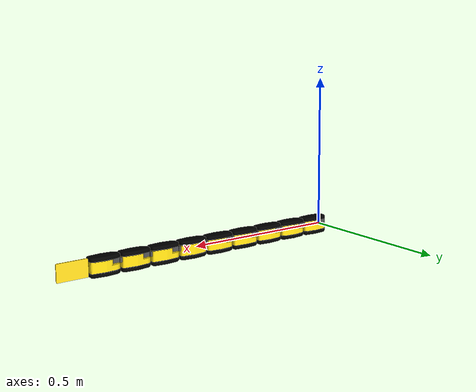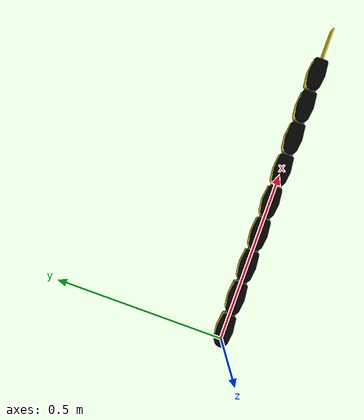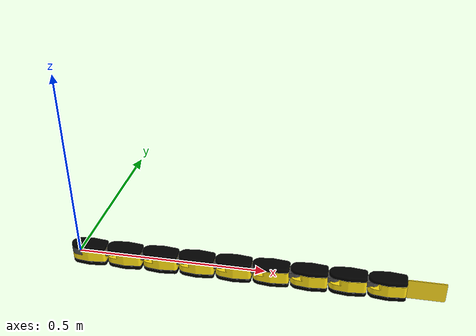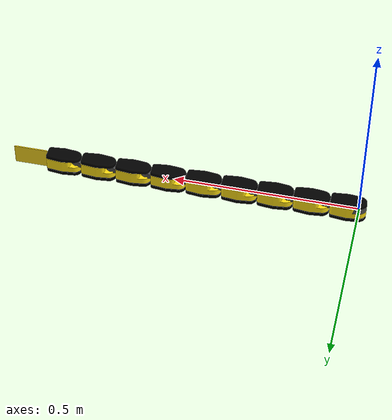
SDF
<?xml version="1.0" ?>
<sdf version="1.6">
    <model name="amphibot">
      <pose>0.0 0.0 0.0 0.0 0.0 0.0</pose>
      <link name="body_module_0">
        <pose>0.0 0.0 0.0 0.0 0.0 0.0</pose>
        <inertial>
          <pose>0.029596198383331537 3.2923378179925624e-05 -0.008853017251982507 0.0 0.0 0.0</pose>
          <mass>0.21400000000000002</mass>
          <inertia>
            <ixx>0.00011899481859948916</ixx>
            <ixy>4.0755619056917915e-09</ixy>
            <ixz>-2.1781625976272155e-06</ixz>
            <iyy>0.00025404081852360363</iyy>
            <iyz>-1.7971413478846753e-09</iyz>
            <izz>0.0002275056741399228</izz>
          </inertia>
        </inertial>
        <collision name="body_module_0_collision">
          <pose>0.0975 0.0 0.0 0.0 0.0 0.0</pose>
          <geometry>
            <mesh>
              <uri>model://amphibot/meshes/amphibot_module.dae</uri>
              <scale>1.0 1.0 1.0</scale>
            </mesh>
          </geometry>
        </collision>
        <visual name="body_module_0_visual">
          <pose>0.0975 0.0 0.0 0.0 0.0 0.0</pose>
          <geometry>
            <mesh>
              <uri>model://amphibot/meshes/amphibot_module.dae</uri>
              <scale>1.0 1.0 1.0</scale>
            </mesh>
          </geometry>
          <material/>
        </visual>
      </link>
      <link name="body_module_1">
        <pose>0.0975 0.0 0.0 0.0 0.0 0.0</pose>
        <inertial>
          <pose>0.029596198383331537 3.2923378179925624e-05 -0.008853017251982507 0.0 0.0 0.0</pose>
          <mass>0.21400000000000002</mass>
          <inertia>
            <ixx>0.00011899481859948916</ixx>
            <ixy>4.0755619056917915e-09</ixy>
            <ixz>-2.1781625976272155e-06</ixz>
            <iyy>0.00025404081852360363</iyy>
            <iyz>-1.7971413478846753e-09</iyz>
            <izz>0.0002275056741399228</izz>
          </inertia>
        </inertial>
        <collision name="body_module_1_collision">
          <pose>0.0975 0.0 0.0 0.0 0.0 0.0</pose>
          <geometry>
            <mesh>
              <uri>model://amphibot/meshes/amphibot_module.dae</uri>
              <scale>1.0 1.0 1.0</scale>
            </mesh>
          </geometry>
        </collision>
        <visual name="body_module_1_visual">
          <pose>0.0975 0.0 0.0 0.0 0.0 0.0</pose>
          <geometry>
            <mesh>
              <uri>model://amphibot/meshes/amphibot_module.dae</uri>
              <scale>1.0 1.0 1.0</scale>
            </mesh>
          </geometry>
          <material/>
        </visual>
      </link>
      <link name="body_module_2">
        <pose>0.195 0.0 0.0 0.0 0.0 0.0</pose>
        <inertial>
          <pose>0.029596198383331537 3.2923378179925624e-05 -0.008853017251982507 0.0 0.0 0.0</pose>
          <mass>0.21400000000000002</mass>
          <inertia>
            <ixx>0.00011899481859948916</ixx>
            <ixy>4.0755619056917915e-09</ixy>
            <ixz>-2.1781625976272155e-06</ixz>
            <iyy>0.00025404081852360363</iyy>
            <iyz>-1.7971413478846753e-09</iyz>
            <izz>0.0002275056741399228</izz>
          </inertia>
        </inertial>
        <collision name="body_module_2_collision">
          <pose>0.0975 0.0 0.0 0.0 0.0 0.0</pose>
          <geometry>
            <mesh>
              <uri>model://amphibot/meshes/amphibot_module.dae</uri>
              <scale>1.0 1.0 1.0</scale>
            </mesh>
          </geometry>
        </collision>
        <visual name="body_module_2_visual">
          <pose>0.0975 0.0 0.0 0.0 0.0 0.0</pose>
          <geometry>
            <mesh>
              <uri>model://amphibot/meshes/amphibot_module.dae</uri>
              <scale>1.0 1.0 1.0</scale>
            </mesh>
          </geometry>
          <material/>
        </visual>
      </link>
      <link name="body_module_3">
        <pose>0.2925 0.0 0.0 0.0 0.0 0.0</pose>
        <inertial>
          <pose>0.029596198383331537 3.2923378179925624e-05 -0.008853017251982507 0.0 0.0 0.0</pose>
          <mass>0.21400000000000002</mass>
          <inertia>
            <ixx>0.00011899481859948916</ixx>
            <ixy>4.0755619056917915e-09</ixy>
            <ixz>-2.1781625976272155e-06</ixz>
            <iyy>0.00025404081852360363</iyy>
            <iyz>-1.7971413478846753e-09</iyz>
            <izz>0.0002275056741399228</izz>
          </inertia>
        </inertial>
        <collision name="body_module_3_collision">
          <pose>0.0975 0.0 0.0 0.0 0.0 0.0</pose>
          <geometry>
            <mesh>
              <uri>model://amphibot/meshes/amphibot_module.dae</uri>
              <scale>1.0 1.0 1.0</scale>
            </mesh>
          </geometry>
        </collision>
        <visual name="body_module_3_visual">
          <pose>0.0975 0.0 0.0 0.0 0.0 0.0</pose>
          <geometry>
            <mesh>
              <uri>model://amphibot/meshes/amphibot_module.dae</uri>
              <scale>1.0 1.0 1.0</scale>
            </mesh>
          </geometry>
          <material/>
        </visual>
      </link>
      <link name="body_module_4">
        <pose>0.39 0.0 0.0 0.0 0.0 0.0</pose>
        <inertial>
          <pose>0.029596198383331537 3.2923378179925624e-05 -0.008853017251982507 0.0 0.0 0.0</pose>
          <mass>0.21400000000000002</mass>
          <inertia>
            <ixx>0.00011899481859948916</ixx>
            <ixy>4.0755619056917915e-09</ixy>
            <ixz>-2.1781625976272155e-06</ixz>
            <iyy>0.00025404081852360363</iyy>
            <iyz>-1.7971413478846753e-09</iyz>
            <izz>0.0002275056741399228</izz>
          </inertia>
        </inertial>
        <collision name="body_module_4_collision">
          <pose>0.0975 0.0 0.0 0.0 0.0 0.0</pose>
          <geometry>
            <mesh>
              <uri>model://amphibot/meshes/amphibot_module.dae</uri>
              <scale>1.0 1.0 1.0</scale>
            </mesh>
          </geometry>
        </collision>
        <visual name="body_module_4_visual">
          <pose>0.0975 0.0 0.0 0.0 0.0 0.0</pose>
          <geometry>
            <mesh>
              <uri>model://amphibot/meshes/amphibot_module.dae</uri>
              <scale>1.0 1.0 1.0</scale>
            </mesh>
          </geometry>
          <material/>
        </visual>
      </link>
      <link name="body_module_5">
        <pose>0.48750000000000004 0.0 0.0 0.0 0.0 0.0</pose>
        <inertial>
          <pose>0.029596198383331537 3.2923378179925624e-05 -0.008853017251982507 0.0 0.0 0.0</pose>
          <mass>0.21400000000000002</mass>
          <inertia>
            <ixx>0.00011899481859948916</ixx>
            <ixy>4.0755619056917915e-09</ixy>
            <ixz>-2.1781625976272155e-06</ixz>
            <iyy>0.00025404081852360363</iyy>
            <iyz>-1.7971413478846753e-09</iyz>
            <izz>0.0002275056741399228</izz>
          </inertia>
        </inertial>
        <collision name="body_module_5_collision">
          <pose>0.0975 0.0 0.0 0.0 0.0 0.0</pose>
          <geometry>
            <mesh>
              <uri>model://amphibot/meshes/amphibot_module.dae</uri>
              <scale>1.0 1.0 1.0</scale>
            </mesh>
          </geometry>
        </collision>
        <visual name="body_module_5_visual">
          <pose>0.0975 0.0 0.0 0.0 0.0 0.0</pose>
          <geometry>
            <mesh>
              <uri>model://amphibot/meshes/amphibot_module.dae</uri>
              <scale>1.0 1.0 1.0</scale>
            </mesh>
          </geometry>
          <material/>
        </visual>
      </link>
      <link name="body_module_6">
        <pose>0.585 0.0 0.0 0.0 0.0 0.0</pose>
        <inertial>
          <pose>0.029596198383331537 3.2923378179925624e-05 -0.008853017251982507 0.0 0.0 0.0</pose>
          <mass>0.21400000000000002</mass>
          <inertia>
            <ixx>0.00011899481859948916</ixx>
            <ixy>4.0755619056917915e-09</ixy>
            <ixz>-2.1781625976272155e-06</ixz>
            <iyy>0.00025404081852360363</iyy>
            <iyz>-1.7971413478846753e-09</iyz>
            <izz>0.0002275056741399228</izz>
          </inertia>
        </inertial>
        <collision name="body_module_6_collision">
          <pose>0.0975 0.0 0.0 0.0 0.0 0.0</pose>
          <geometry>
            <mesh>
              <uri>model://amphibot/meshes/amphibot_module.dae</uri>
              <scale>1.0 1.0 1.0</scale>
            </mesh>
          </geometry>
        </collision>
        <visual name="body_module_6_visual">
          <pose>0.0975 0.0 0.0 0.0 0.0 0.0</pose>
          <geometry>
            <mesh>
              <uri>model://amphibot/meshes/amphibot_module.dae</uri>
              <scale>1.0 1.0 1.0</scale>
            </mesh>
          </geometry>
          <material/>
        </visual>
      </link>
      <link name="body_module_7">
        <pose>0.6825 0.0 0.0 0.0 0.0 0.0</pose>
        <inertial>
          <pose>0.029596198383331537 3.2923378179925624e-05 -0.008853017251982507 0.0 0.0 0.0</pose>
          <mass>0.21400000000000002</mass>
          <inertia>
            <ixx>0.00011899481859948916</ixx>
            <ixy>4.0755619056917915e-09</ixy>
            <ixz>-2.1781625976272155e-06</ixz>
            <iyy>0.00025404081852360363</iyy>
            <iyz>-1.7971413478846753e-09</iyz>
            <izz>0.0002275056741399228</izz>
          </inertia>
        </inertial>
        <collision name="body_module_7_collision">
          <pose>0.0975 0.0 0.0 0.0 0.0 0.0</pose>
          <geometry>
            <mesh>
              <uri>model://amphibot/meshes/amphibot_module.dae</uri>
              <scale>1.0 1.0 1.0</scale>
            </mesh>
          </geometry>
        </collision>
        <visual name="body_module_7_visual">
          <pose>0.0975 0.0 0.0 0.0 0.0 0.0</pose>
          <geometry>
            <mesh>
              <uri>model://amphibot/meshes/amphibot_module.dae</uri>
              <scale>1.0 1.0 1.0</scale>
            </mesh>
          </geometry>
          <material/>
        </visual>
      </link>
      <link name="body_module_8">
        <pose>0.78 0.0 0.0 0.0 0.0 0.0</pose>
        <inertial>
          <pose>0.029596198383331537 3.2923378179925624e-05 -0.008853017251982507 0.0 0.0 0.0</pose>
          <mass>0.21400000000000002</mass>
          <inertia>
            <ixx>0.00011899481859948916</ixx>
            <ixy>4.0755619056917915e-09</ixy>
            <ixz>-2.1781625976272155e-06</ixz>
            <iyy>0.00025404081852360363</iyy>
            <iyz>-1.7971413478846753e-09</iyz>
            <izz>0.0002275056741399228</izz>
          </inertia>
        </inertial>
        <collision name="body_module_8_collision">
          <pose>0.0975 0.0 0.0 0.0 0.0 0.0</pose>
          <geometry>
            <mesh>
              <uri>model://amphibot/meshes/amphibot_module.dae</uri>
              <scale>1.0 1.0 1.0</scale>
            </mesh>
          </geometry>
        </collision>
        <visual name="body_module_8_visual">
          <pose>0.0975 0.0 0.0 0.0 0.0 0.0</pose>
          <geometry>
            <mesh>
              <uri>model://amphibot/meshes/amphibot_module.dae</uri>
              <scale>1.0 1.0 1.0</scale>
            </mesh>
          </geometry>
          <material/>
        </visual>
      </link>
      <link name="body_connector_0">
        <pose>0.0 0.0 0.0 0.0 0.0 0.0</pose>
        <inertial>
          <pose>0.0870838011914423 9.854652666755277e-06 0.009335993975232255 0.0 0.0 0.0</pose>
          <mass>0.02</mass>
          <inertia>
            <ixx>1.4289586715122325e-06</ixx>
            <ixy>-7.125554049376751e-11</ixy>
            <ixz>7.351742039123867e-08</ixz>
            <iyy>1.5640750569250598e-06</iyy>
            <iyz>-3.6602870634995696e-11</iyz>
            <izz>2.1333392254479693e-06</izz>
          </inertia>
        </inertial>
        <collision name="body_connector_0_collision">
          <pose>0.0975 0.0 0.0 0.0 0.0 0.0</pose>
          <geometry>
            <mesh>
              <uri>model://amphibot/meshes/amphibot_connector.dae</uri>
              <scale>1.0 1.0 1.0</scale>
            </mesh>
          </geometry>
        </collision>
        <visual name="body_connector_0_visual">
          <pose>0.0975 0.0 0.0 0.0 0.0 0.0</pose>
          <geometry>
            <mesh>
              <uri>model://amphibot/meshes/amphibot_connector.dae</uri>
              <scale>1.0 1.0 1.0</scale>
            </mesh>
          </geometry>
          <material/>
        </visual>
      </link>
      <link name="body_connector_1">
        <pose>0.0975 0.0 0.0 0.0 0.0 0.0</pose>
        <inertial>
          <pose>0.0870838011914423 9.854652666755277e-06 0.009335993975232255 0.0 0.0 0.0</pose>
          <mass>0.02</mass>
          <inertia>
            <ixx>1.4289586715122325e-06</ixx>
            <ixy>-7.125554049376751e-11</ixy>
            <ixz>7.351742039123867e-08</ixz>
            <iyy>1.5640750569250598e-06</iyy>
            <iyz>-3.6602870634995696e-11</iyz>
            <izz>2.1333392254479693e-06</izz>
          </inertia>
        </inertial>
        <collision name="body_connector_1_collision">
          <pose>0.0975 0.0 0.0 0.0 0.0 0.0</pose>
          <geometry>
            <mesh>
              <uri>model://amphibot/meshes/amphibot_connector.dae</uri>
              <scale>1.0 1.0 1.0</scale>
            </mesh>
          </geometry>
        </collision>
        <visual name="body_connector_1_visual">
          <pose>0.0975 0.0 0.0 0.0 0.0 0.0</pose>
          <geometry>
            <mesh>
              <uri>model://amphibot/meshes/amphibot_connector.dae</uri>
              <scale>1.0 1.0 1.0</scale>
            </mesh>
          </geometry>
          <material/>
        </visual>
      </link>
      <link name="body_connector_2">
        <pose>0.195 0.0 0.0 0.0 0.0 0.0</pose>
        <inertial>
          <pose>0.0870838011914423 9.854652666755277e-06 0.009335993975232255 0.0 0.0 0.0</pose>
          <mass>0.02</mass>
          <inertia>
            <ixx>1.4289586715122325e-06</ixx>
            <ixy>-7.125554049376751e-11</ixy>
            <ixz>7.351742039123867e-08</ixz>
            <iyy>1.5640750569250598e-06</iyy>
            <iyz>-3.6602870634995696e-11</iyz>
            <izz>2.1333392254479693e-06</izz>
          </inertia>
        </inertial>
        <collision name="body_connector_2_collision">
          <pose>0.0975 0.0 0.0 0.0 0.0 0.0</pose>
          <geometry>
            <mesh>
              <uri>model://amphibot/meshes/amphibot_connector.dae</uri>
              <scale>1.0 1.0 1.0</scale>
            </mesh>
          </geometry>
        </collision>
        <visual name="body_connector_2_visual">
          <pose>0.0975 0.0 0.0 0.0 0.0 0.0</pose>
          <geometry>
            <mesh>
              <uri>model://amphibot/meshes/amphibot_connector.dae</uri>
              <scale>1.0 1.0 1.0</scale>
            </mesh>
          </geometry>
          <material/>
        </visual>
      </link>
      <link name="body_connector_3">
        <pose>0.2925 0.0 0.0 0.0 0.0 0.0</pose>
        <inertial>
          <pose>0.0870838011914423 9.854652666755277e-06 0.009335993975232255 0.0 0.0 0.0</pose>
          <mass>0.02</mass>
          <inertia>
            <ixx>1.4289586715122325e-06</ixx>
            <ixy>-7.125554049376751e-11</ixy>
            <ixz>7.351742039123867e-08</ixz>
            <iyy>1.5640750569250598e-06</iyy>
            <iyz>-3.6602870634995696e-11</iyz>
            <izz>2.1333392254479693e-06</izz>
          </inertia>
        </inertial>
        <collision name="body_connector_3_collision">
          <pose>0.0975 0.0 0.0 0.0 0.0 0.0</pose>
          <geometry>
            <mesh>
              <uri>model://amphibot/meshes/amphibot_connector.dae</uri>
              <scale>1.0 1.0 1.0</scale>
            </mesh>
          </geometry>
        </collision>
        <visual name="body_connector_3_visual">
          <pose>0.0975 0.0 0.0 0.0 0.0 0.0</pose>
          <geometry>
            <mesh>
              <uri>model://amphibot/meshes/amphibot_connector.dae</uri>
              <scale>1.0 1.0 1.0</scale>
            </mesh>
          </geometry>
          <material/>
        </visual>
      </link>
      <link name="body_connector_4">
        <pose>0.39 0.0 0.0 0.0 0.0 0.0</pose>
        <inertial>
          <pose>0.0870838011914423 9.854652666755277e-06 0.009335993975232255 0.0 0.0 0.0</pose>
          <mass>0.02</mass>
          <inertia>
            <ixx>1.4289586715122325e-06</ixx>
            <ixy>-7.125554049376751e-11</ixy>
            <ixz>7.351742039123867e-08</ixz>
            <iyy>1.5640750569250598e-06</iyy>
            <iyz>-3.6602870634995696e-11</iyz>
            <izz>2.1333392254479693e-06</izz>
          </inertia>
        </inertial>
        <collision name="body_connector_4_collision">
          <pose>0.0975 0.0 0.0 0.0 0.0 0.0</pose>
          <geometry>
            <mesh>
              <uri>model://amphibot/meshes/amphibot_connector.dae</uri>
              <scale>1.0 1.0 1.0</scale>
            </mesh>
          </geometry>
        </collision>
        <visual name="body_connector_4_visual">
          <pose>0.0975 0.0 0.0 0.0 0.0 0.0</pose>
          <geometry>
            <mesh>
              <uri>model://amphibot/meshes/amphibot_connector.dae</uri>
              <scale>1.0 1.0 1.0</scale>
            </mesh>
          </geometry>
          <material/>
        </visual>
      </link>
      <link name="body_connector_5">
        <pose>0.48750000000000004 0.0 0.0 0.0 0.0 0.0</pose>
        <inertial>
          <pose>0.0870838011914423 9.854652666755277e-06 0.009335993975232255 0.0 0.0 0.0</pose>
          <mass>0.02</mass>
          <inertia>
            <ixx>1.4289586715122325e-06</ixx>
            <ixy>-7.125554049376751e-11</ixy>
            <ixz>7.351742039123867e-08</ixz>
            <iyy>1.5640750569250598e-06</iyy>
            <iyz>-3.6602870634995696e-11</iyz>
            <izz>2.1333392254479693e-06</izz>
          </inertia>
        </inertial>
        <collision name="body_connector_5_collision">
          <pose>0.0975 0.0 0.0 0.0 0.0 0.0</pose>
          <geometry>
            <mesh>
              <uri>model://amphibot/meshes/amphibot_connector.dae</uri>
              <scale>1.0 1.0 1.0</scale>
            </mesh>
          </geometry>
        </collision>
        <visual name="body_connector_5_visual">
          <pose>0.0975 0.0 0.0 0.0 0.0 0.0</pose>
          <geometry>
            <mesh>
              <uri>model://amphibot/meshes/amphibot_connector.dae</uri>
              <scale>1.0 1.0 1.0</scale>
            </mesh>
          </geometry>
          <material/>
        </visual>
      </link>
      <link name="body_connector_6">
        <pose>0.585 0.0 0.0 0.0 0.0 0.0</pose>
        <inertial>
          <pose>0.0870838011914423 9.854652666755277e-06 0.009335993975232255 0.0 0.0 0.0</pose>
          <mass>0.02</mass>
          <inertia>
            <ixx>1.4289586715122325e-06</ixx>
            <ixy>-7.125554049376751e-11</ixy>
            <ixz>7.351742039123867e-08</ixz>
            <iyy>1.5640750569250598e-06</iyy>
            <iyz>-3.6602870634995696e-11</iyz>
            <izz>2.1333392254479693e-06</izz>
          </inertia>
        </inertial>
        <collision name="body_connector_6_collision">
          <pose>0.0975 0.0 0.0 0.0 0.0 0.0</pose>
          <geometry>
            <mesh>
              <uri>model://amphibot/meshes/amphibot_connector.dae</uri>
              <scale>1.0 1.0 1.0</scale>
            </mesh>
          </geometry>
        </collision>
        <visual name="body_connector_6_visual">
          <pose>0.0975 0.0 0.0 0.0 0.0 0.0</pose>
          <geometry>
            <mesh>
              <uri>model://amphibot/meshes/amphibot_connector.dae</uri>
              <scale>1.0 1.0 1.0</scale>
            </mesh>
          </geometry>
          <material/>
        </visual>
      </link>
      <link name="body_connector_7">
        <pose>0.6825 0.0 0.0 0.0 0.0 0.0</pose>
        <inertial>
          <pose>0.0870838011914423 9.854652666755277e-06 0.009335993975232255 0.0 0.0 0.0</pose>
          <mass>0.02</mass>
          <inertia>
            <ixx>1.4289586715122325e-06</ixx>
            <ixy>-7.125554049376751e-11</ixy>
            <ixz>7.351742039123867e-08</ixz>
            <iyy>1.5640750569250598e-06</iyy>
            <iyz>-3.6602870634995696e-11</iyz>
            <izz>2.1333392254479693e-06</izz>
          </inertia>
        </inertial>
        <collision name="body_connector_7_collision">
          <pose>0.0975 0.0 0.0 0.0 0.0 0.0</pose>
          <geometry>
            <mesh>
              <uri>model://amphibot/meshes/amphibot_connector.dae</uri>
              <scale>1.0 1.0 1.0</scale>
            </mesh>
          </geometry>
        </collision>
        <visual name="body_connector_7_visual">
          <pose>0.0975 0.0 0.0 0.0 0.0 0.0</pose>
          <geometry>
            <mesh>
              <uri>model://amphibot/meshes/amphibot_connector.dae</uri>
              <scale>1.0 1.0 1.0</scale>
            </mesh>
          </geometry>
          <material/>
        </visual>
      </link>
      <link name="tail">
        <pose>0.8775000000000001 0.0 0.0 0.0 0.0 0.0</pose>
        <inertial>
          <pose>0.027042109434386934 -0.0018652549848790748 -0.00032043625271577605 0.0 0.0 0.0</pose>
          <mass>0.018</mass>
          <inertia>
            <ixx>5.026385123630433e-06</ixx>
            <ixy>1.778138135126363e-07</ixy>
            <ixz>2.601906696340963e-07</ixz>
            <iyy>1.8432748243088785e-05</iyy>
            <iyz>-9.177519623265663e-09</iyz>
            <izz>1.341540669110615e-05</izz>
          </inertia>
        </inertial>
        <collision name="tail_collision">
          <pose>0.0 0.0 0.0 0.0 0.0 0.0</pose>
          <geometry>
            <mesh>
              <uri>model://amphibot/meshes/amphibot_tail.dae</uri>
              <scale>1.0 1.0 1.0</scale>
            </mesh>
          </geometry>
        </collision>
        <visual name="tail_visual">
          <pose>0.0 0.0 0.0 0.0 0.0 0.0</pose>
          <geometry>
            <mesh>
              <uri>model://amphibot/meshes/amphibot_tail.dae</uri>
              <scale>1.0 1.0 1.0</scale>
            </mesh>
          </geometry>
          <material/>
        </visual>
      </link>
      <link name="eyes">
        <pose>0.0975 0.0 0.0 0.0 0.0 0.0</pose>
        <inertial>
          <pose>-0.09731520740143583 3.323096332725175e-05 0.009787513378397868 0.0 0.0 0.0</pose>
          <mass>0.01</mass>
          <inertia>
            <ixx>1.528677884321247e-06</ixx>
            <ixy>1.6502736236339367e-10</ixy>
            <ixz>-2.9481793462596264e-09</ixz>
            <iyy>1.1615283632216405e-06</iyy>
            <iyz>-6.537034580072569e-11</iyz>
            <izz>2.136549089153614e-06</izz>
          </inertia>
        </inertial>
        <collision name="eyes_collision">
          <pose>0.0 0.0 0.0 0.0 0.0 0.0</pose>
          <geometry>
            <mesh>
              <uri>model://amphibot/meshes/amphibot_eyes.dae</uri>
              <scale>1.0 1.0 1.0</scale>
            </mesh>
          </geometry>
        </collision>
        <visual name="eyes_visual">
          <pose>0.0 0.0 0.0 0.0 0.0 0.0</pose>
          <geometry>
            <mesh>
              <uri>model://amphibot/meshes/amphibot_eyes.dae</uri>
              <scale>1.0 1.0 1.0</scale>
            </mesh>
          </geometry>
          <material/>
        </visual>
      </link>
      <joint name="joint_m2c_0" type="fixed">
        <parent>body_module_0</parent>
        <child>body_connector_0</child>
        <pose>0.0 0.0 0.0 0.0 0.0 0.0</pose>
      </joint>
      <joint name="joint_m2c_1" type="fixed">
        <parent>body_module_1</parent>
        <child>body_connector_1</child>
        <pose>0.0 0.0 0.0 0.0 0.0 0.0</pose>
      </joint>
      <joint name="joint_m2c_2" type="fixed">
        <parent>body_module_2</parent>
        <child>body_connector_2</child>
        <pose>0.0 0.0 0.0 0.0 0.0 0.0</pose>
      </joint>
      <joint name="joint_m2c_3" type="fixed">
        <parent>body_module_3</parent>
        <child>body_connector_3</child>
        <pose>0.0 0.0 0.0 0.0 0.0 0.0</pose>
      </joint>
      <joint name="joint_m2c_4" type="fixed">
        <parent>body_module_4</parent>
        <child>body_connector_4</child>
        <pose>0.0 0.0 0.0 0.0 0.0 0.0</pose>
      </joint>
      <joint name="joint_m2c_5" type="fixed">
        <parent>body_module_5</parent>
        <child>body_connector_5</child>
        <pose>0.0 0.0 0.0 0.0 0.0 0.0</pose>
      </joint>
      <joint name="joint_m2c_6" type="fixed">
        <parent>body_module_6</parent>
        <child>body_connector_6</child>
        <pose>0.0 0.0 0.0 0.0 0.0 0.0</pose>
      </joint>
      <joint name="joint_m2c_7" type="fixed">
        <parent>body_module_7</parent>
        <child>body_connector_7</child>
        <pose>0.0 0.0 0.0 0.0 0.0 0.0</pose>
      </joint>
      <joint name="joint_c2m_0" type="revolute">
        <parent>body_connector_0</parent>
        <child>body_module_1</child>
        <pose>0.0 0.0 0.0 0.0 0.0 0.0</pose>
        <axis>
          <xyz>0 0 1</xyz>
          <limit>
            <lower>-3.141592653589793</lower>
            <upper>3.141592653589793</upper>
            <effort>10000000000.0</effort>
            <velocity>628.3185307179587</velocity>
          </limit>
        </axis>
      </joint>
      <joint name="joint_c2m_1" type="revolute">
        <parent>body_connector_1</parent>
        <child>body_module_2</child>
        <pose>0.0 0.0 0.0 0.0 0.0 0.0</pose>
        <axis>
          <xyz>0 0 1</xyz>
          <limit>
            <lower>-3.141592653589793</lower>
            <upper>3.141592653589793</upper>
            <effort>10000000000.0</effort>
            <velocity>628.3185307179587</velocity>
          </limit>
        </axis>
      </joint>
      <joint name="joint_c2m_2" type="revolute">
        <parent>body_connector_2</parent>
        <child>body_module_3</child>
        <pose>0.0 0.0 0.0 0.0 0.0 0.0</pose>
        <axis>
          <xyz>0 0 1</xyz>
          <limit>
            <lower>-3.141592653589793</lower>
            <upper>3.141592653589793</upper>
            <effort>10000000000.0</effort>
            <velocity>628.3185307179587</velocity>
          </limit>
        </axis>
      </joint>
      <joint name="joint_c2m_3" type="revolute">
        <parent>body_connector_3</parent>
        <child>body_module_4</child>
        <pose>0.0 0.0 0.0 0.0 0.0 0.0</pose>
        <axis>
          <xyz>0 0 1</xyz>
          <limit>
            <lower>-3.141592653589793</lower>
            <upper>3.141592653589793</upper>
            <effort>10000000000.0</effort>
            <velocity>628.3185307179587</velocity>
          </limit>
        </axis>
      </joint>
      <joint name="joint_c2m_4" type="revolute">
        <parent>body_connector_4</parent>
        <child>body_module_5</child>
        <pose>0.0 0.0 0.0 0.0 0.0 0.0</pose>
        <axis>
          <xyz>0 0 1</xyz>
          <limit>
            <lower>-3.141592653589793</lower>
            <upper>3.141592653589793</upper>
            <effort>10000000000.0</effort>
            <velocity>628.3185307179587</velocity>
          </limit>
        </axis>
      </joint>
      <joint name="joint_c2m_5" type="revolute">
        <parent>body_connector_5</parent>
        <child>body_module_6</child>
        <pose>0.0 0.0 0.0 0.0 0.0 0.0</pose>
        <axis>
          <xyz>0 0 1</xyz>
          <limit>
            <lower>-3.141592653589793</lower>
            <upper>3.141592653589793</upper>
            <effort>10000000000.0</effort>
            <velocity>628.3185307179587</velocity>
          </limit>
        </axis>
      </joint>
      <joint name="joint_c2m_6" type="revolute">
        <parent>body_connector_6</parent>
        <child>body_module_7</child>
        <pose>0.0 0.0 0.0 0.0 0.0 0.0</pose>
        <axis>
          <xyz>0 0 1</xyz>
          <limit>
            <lower>-3.141592653589793</lower>
            <upper>3.141592653589793</upper>
            <effort>10000000000.0</effort>
            <velocity>628.3185307179587</velocity>
          </limit>
        </axis>
      </joint>
      <joint name="joint_c2m_7" type="revolute">
        <parent>body_connector_7</parent>
        <child>body_module_8</child>
        <pose>0.0 0.0 0.0 0.0 0.0 0.0</pose>
        <axis>
          <xyz>0 0 1</xyz>
          <limit>
            <lower>-3.141592653589793</lower>
            <upper>3.141592653589793</upper>
            <effort>10000000000.0</effort>
            <velocity>628.3185307179587</velocity>
          </limit>
        </axis>
      </joint>
      <joint name="joint_tail" type="fixed">
        <parent>body_module_8</parent>
        <child>tail</child>
        <pose>0.0 0.0 0.0 0.0 0.0 0.0</pose>
      </joint>
      <joint name="joint_eyes" type="fixed">
        <parent>body_module_0</parent>
        <child>eyes</child>
        <pose>0.0 0.0 0.0 0.0 0.0 0.0</pose>
      </joint>

      <plugin name="controllerPlugin" filename="liblamprey_simple_fluids_controller.so"></plugin>
      <plugin name="dragPlugin" filename="liblamprey_drag_force.so"></plugin>
      <plugin name="buoyancyPlugin" filename="libBuoyancyPlugin.so">
         <link name="body_module_0">
          <volume>0.000550495</volume>
          <center_of_volume>0.0 0. 0</center_of_volume>
        </link>
        <link name="body_module_1">
          <volume>0.000550495</volume>
          <center_of_volume>0.0 0. 0</center_of_volume>
        </link>
        <link name="body_module_2">
          <volume>0.000550495</volume>
          <center_of_volume>0.0 0. 0</center_of_volume>
        </link>
        <link name="body_module_3">
          <volume>0.000550495</volume>
          <center_of_volume>0.0 0. 0</center_of_volume>
        </link>
        <link name="body_module_4">
          <volume>0.000550495</volume>
          <center_of_volume>0.0 0. 0</center_of_volume>
        </link>
        <link name="body_module_5">
          <volume>0.000550495</volume>
          <center_of_volume>0.0 0. 0</center_of_volume>
        </link>
        <link name="body_module_6">
          <volume>0.000550495</volume>
          <center_of_volume>0.0 0. 0</center_of_volume>
        </link>
        <link name="body_module_7">
          <volume>0.000550495</volume>
          <center_of_volume>0.0 0. 0</center_of_volume>
        </link>
        <link name="body_module_8">
          <volume>0.000550495</volume>
          <center_of_volume>0.0 0. 0</center_of_volume>
        </link>
      </plugin>
    </model>
</sdf>
